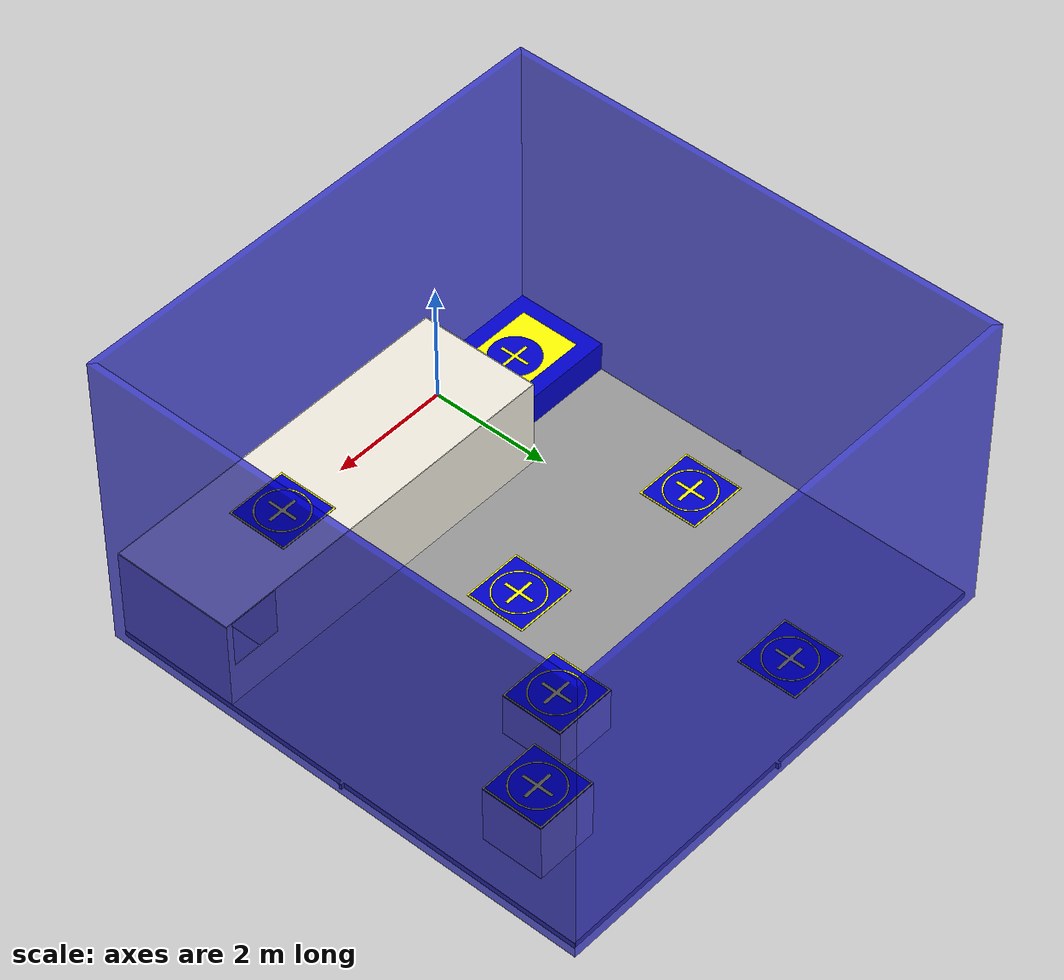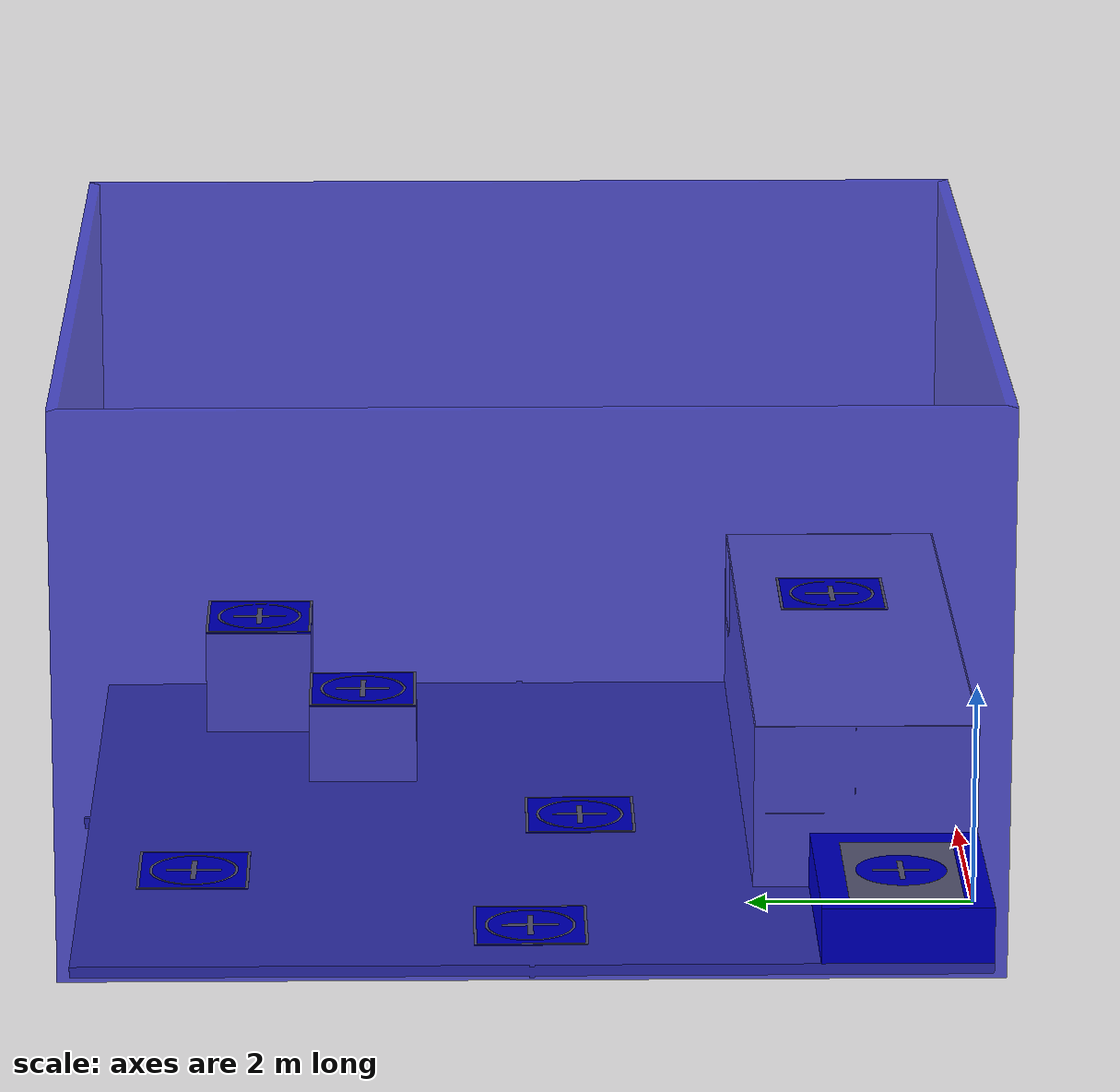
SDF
<sdf version='1.11'>
  <model name='arena_2025_desenho_2'>
    <link name='base_link'>
      <inertial>
        <pose>2.155232091123203 3.8505883809555179 1.663648573956134 0 0 0</pose>
        <mass>209967.48191373851</mass>
        <inertia>
          <ixx>2472111.9339144002</ixx>
          <ixy>-173259.3883490923</ixy>
          <ixz>-8533.563240836258</ixz>
          <iyy>2457101.6842017588</iyy>
          <iyz>-26917.53058494721</iyz>
          <izz>3817310.6190368058</izz>
        </inertia>
      </inertial>
      <collision name='base_link_collision_collision'>
        <pose>0 0 0 0 0 0</pose>
        <geometry>
          <mesh>
            <scale>0.001 0.001 0.001</scale>
            <uri>meshes/base_link.stl</uri>
          </mesh>
        </geometry>
      </collision>
      <collision name='base_link_fixed_joint_lump__parede1_collision_collision_1'>
        <pose>-1.8502115568123969 -0.041793670335398492 -1.387778780781446e-17 0 0 0</pose>
        <geometry>
          <mesh>
            <scale>0.001 0.001 0.001</scale>
            <uri>meshes/parede1.stl</uri>
          </mesh>
        </geometry>
      </collision>
      <collision name='base_link_fixed_joint_lump__parede4_collision_collision_2'>
        <pose>-1.8502115568123969 -0.041793670335399817 -2.4355517602714372e-15 0 0 0</pose>
        <geometry>
          <mesh>
            <scale>0.001 0.001 0.001</scale>
            <uri>meshes/parede4.stl</uri>
          </mesh>
        </geometry>
      </collision>
      <collision name='base_link_fixed_joint_lump__parede3_collision_collision_3'>
        <pose>-1.8502115568123969 -0.041793670335398943 1.117161918529064e-15 1.224646799147353e-16 -7.4987989133092894e-33 1.224646799147353e-16</pose>
        <geometry>
          <mesh>
            <scale>0.001 0.001 0.001</scale>
            <uri>meshes/parede3.stl</uri>
          </mesh>
        </geometry>
      </collision>
      <collision name='base_link_fixed_joint_lump__parede2_collision_collision_4'>
        <pose>-1.8502115568123969 -0.041793670335398478 -1.387778780781446e-17 0 0 0</pose>
        <geometry>
          <mesh>
            <scale>0.001 0.001 0.001</scale>
            <uri>meshes/parede2.stl</uri>
          </mesh>
        </geometry>
      </collision>
      <collision name='base_link_fixed_joint_lump__Takeoff_Baseazul_collision_collision_5'>
        <pose>-1.8502115568123969 -0.041793670335398492 2.9143354396410359e-16 0 0 0</pose>
        <geometry>
          <mesh>
            <scale>0.001 0.001 0.001</scale>
            <uri>meshes/Takeoff_Baseazul.stl</uri>
          </mesh>
        </geometry>
      </collision>
      <collision name='base_link_fixed_joint_lump__Takeoff_Baseamarelo_collision_collision_6'>
        <pose>-1.8502115568123969 -0.041793670335398492 3.6082248300317588e-16 0 0 0</pose>
        <geometry>
          <mesh>
            <scale>0.001 0.001 0.001</scale>
            <uri>meshes/Takeoff_Baseamarelo.stl</uri>
          </mesh>
        </geometry>
      </collision>
      <collision name='base_link_fixed_joint_lump__casa_paredes_collision_collision_7'>
        <pose>-1.850211556812398 -0.041793670335398492 0 0 0 0</pose>
        <geometry>
          <mesh>
            <scale>0.001 0.001 0.001</scale>
            <uri>meshes/casa_paredes.stl</uri>
          </mesh>
        </geometry>
      </collision>
      <collision name='base_link_fixed_joint_lump__casa_teto_collision_collision_8'>
        <pose>-1.8502115568123949 -0.041793670335397937 1.110223024625157e-16 0 0 0</pose>
        <geometry>
          <mesh>
            <scale>0.001 0.001 0.001</scale>
            <uri>meshes/casa_teto.stl</uri>
          </mesh>
        </geometry>
      </collision>
      <collision name='base_link_fixed_joint_lump__Landing_Basesazul6_collision_collision_9'>
        <pose>-0.85021155681239957 -0.041793670335397708 3.3306690738754701e-16 0 0 -2.465190328815663e-32</pose>
        <geometry>
          <mesh>
            <scale>0.001 0.001 0.001</scale>
            <uri>meshes/Landing_Basesazul6.stl</uri>
          </mesh>
        </geometry>
      </collision>
      <collision name='base_link_fixed_joint_lump__Landing_Basesamarelo_6_collision_collision_10'>
        <pose>-0.85021155681239957 -0.041793670335397708 -0.00099999999999977884 0 0 -2.465190328815663e-32</pose>
        <geometry>
          <mesh>
            <scale>0.001 0.001 0.001</scale>
            <uri>meshes/Landing_Basesamarelo_6.stl</uri>
          </mesh>
        </geometry>
      </collision>
      <collision name='base_link_fixed_joint_lump__base_movelzinza2_collision_collision_11'>
        <pose>0.64978851318359254 -0.041793670654296733 -0.001000000014901165 0 0 0</pose>
        <geometry>
          <mesh>
            <scale>0.001 0.001 0.001</scale>
            <uri>meshes/base_movelzinza2.stl</uri>
          </mesh>
        </geometry>
      </collision>
      <collision name='base_link_fixed_joint_lump__Landing_Basesazul2_collision_collision_12'>
        <pose>0.64978851318359876 -0.041793670654286068 -0.001000016108155283 0 0 0</pose>
        <geometry>
          <mesh>
            <scale>0.001 0.001 0.001</scale>
            <uri>meshes/Landing_Basesazul2.stl</uri>
          </mesh>
        </geometry>
      </collision>
      <collision name='base_link_fixed_joint_lump__Landing_Basesamarelo_2_collision_collision_13'>
        <pose>0.6497885131836032 -0.041793670654280753 -0.001000016108155283 0 0 0</pose>
        <geometry>
          <mesh>
            <scale>0.001 0.001 0.001</scale>
            <uri>meshes/Landing_Basesamarelo_2.stl</uri>
          </mesh>
        </geometry>
      </collision>
      <collision name='base_link_fixed_joint_lump__base_movelzinza1_collision_collision_14'>
        <pose>2.649788478185604 2.458206329505169 -0.0010000000000036371 0 0 0</pose>
        <geometry>
          <mesh>
            <scale>0.001 0.001 0.001</scale>
            <uri>meshes/base_movelzinza1.stl</uri>
          </mesh>
        </geometry>
      </collision>
      <collision name='base_link_fixed_joint_lump__Landing_Basesazul1_collision_collision_15'>
        <pose>2.6497884781856058 2.4582063295051761 1.4897499900357051e-11 0 0 0</pose>
        <geometry>
          <mesh>
            <scale>0.001 0.001 0.001</scale>
            <uri>meshes/Landing_Basesazul1.stl</uri>
          </mesh>
        </geometry>
      </collision>
      <collision name='base_link_fixed_joint_lump__Landing_Basesamarelo_1_collision_collision_16'>
        <pose>2.6497884781856089 2.4582063295051868 1.4897499900357051e-11 0 0 0</pose>
        <geometry>
          <mesh>
            <scale>0.001 0.001 0.001</scale>
            <uri>meshes/Landing_Basesamarelo_1.stl</uri>
          </mesh>
        </geometry>
      </collision>
      <collision name='base_link_fixed_joint_lump__Landing_Basesazul5_collision_collision_17'>
        <pose>-4.8502115218143844 0.45820632950516021 -3.6914915568786447e-15 0 0 0</pose>
        <geometry>
          <mesh>
            <scale>0.001 0.001 0.001</scale>
            <uri>meshes/Landing_Basesazul5.stl</uri>
          </mesh>
        </geometry>
      </collision>
      <collision name='base_link_fixed_joint_lump__Landing_Basesamarelo_5_collision_collision_18'>
        <pose>-4.8502115218144022 0.45820632950515222 -3.6914915568786447e-15 0 0 0</pose>
        <geometry>
          <mesh>
            <scale>0.001 0.001 0.001</scale>
            <uri>meshes/Landing_Basesamarelo_5.stl</uri>
          </mesh>
        </geometry>
      </collision>
      <collision name='base_link_fixed_joint_lump__Landing_Basesazul4_collision_collision_19'>
        <pose>-4.8502115218144022 -0.54179367049484783 -3.6914915568786447e-15 0 0 0</pose>
        <geometry>
          <mesh>
            <scale>0.001 0.001 0.001</scale>
            <uri>meshes/Landing_Basesazul4.stl</uri>
          </mesh>
        </geometry>
      </collision>
      <collision name='base_link_fixed_joint_lump__Landing_Basesamarelo_4_collision_collision_20'>
        <pose>-4.8502115218144022 -0.54179367049484783 -3.6914915568786447e-15 0 0 0</pose>
        <geometry>
          <mesh>
            <scale>0.001 0.001 0.001</scale>
            <uri>meshes/Landing_Basesamarelo_4.stl</uri>
          </mesh>
        </geometry>
      </collision>
      <collision name='base_link_fixed_joint_lump__Landing_Basesazul3_collision_collision_21'>
        <pose>-0.85021152181440163 0.95820632950515261 2.9143354396410359e-16 0 0 0</pose>
        <geometry>
          <mesh>
            <scale>0.001 0.001 0.001</scale>
            <uri>meshes/Landing_Basesazul3.stl</uri>
          </mesh>
        </geometry>
      </collision>
      <collision name='base_link_fixed_joint_lump__Landing_Basesamarelo_3_collision_collision_22'>
        <pose>-0.85021152181440163 0.95820632950515261 2.7755575615628909e-16 0 0 0</pose>
        <geometry>
          <mesh>
            <scale>0.001 0.001 0.001</scale>
            <uri>meshes/Landing_Basesamarelo_3.stl</uri>
          </mesh>
        </geometry>
      </collision>

      #visuals cores

      <visual name='base_link_visual_visual'>
        <pose>0 0 0 0 0 0</pose>
        <geometry>
          <mesh>
            <scale>0.001 0.001 0.001</scale>
            <uri>meshes/base_link.stl</uri>
          </mesh>
        </geometry>
        <material>
          <ambient>0.4 0.4 0.4 1</ambient>
          <diffuse>0.6 0.6 0.6 1</diffuse>
          <specular>0.8 0.8 0.8 1</specular>
        </material>
      </visual>
      <visual name='base_link_fixed_joint_lump__parede1_visual_visual_1'>
        <pose>-1.8502115568123969 -0.041793670335398492 -1.387778780781446e-17 0 0 0</pose>
        <geometry>
          <mesh>
            <scale>0.001 0.001 0.001</scale>
            <uri>meshes/parede1.stl</uri>
          </mesh>
        </geometry>
        <material>
          <ambient>0.0 0.0 0.5 0.65</ambient>
          <diffuse>0.0 0.0 0.8 0.65</diffuse>
          <specular>0.3 0.3 0.8 0.65</specular>
          <transparency>0.65</transparency>
        </material>
      </visual>
      <visual name='base_link_fixed_joint_lump__parede4_visual_visual_2'>
        <pose>-1.8502115568123969 -0.041793670335399817 -2.4355517602714372e-15 0 0 0</pose>
        <geometry>
          <mesh>
            <scale>0.001 0.001 0.001</scale>
            <uri>meshes/parede4.stl</uri>
          </mesh>
        </geometry>
        <material>
          <ambient>0.0 0.0 0.5 0.65</ambient>
          <diffuse>0.0 0.0 0.8 0.65</diffuse>
          <specular>0.3 0.3 0.8 0.65</specular>
          <transparency>0.65</transparency>
        </material>
      </visual>
      <visual name='base_link_fixed_joint_lump__parede3_visual_visual_3'>
        <pose>-1.8502115568123969 -0.041793670335398943 1.117161918529064e-15 1.224646799147353e-16 -7.4987989133092894e-33 1.224646799147353e-16</pose>
        <geometry>
          <mesh>
            <scale>0.001 0.001 0.001</scale>
            <uri>meshes/parede3.stl</uri>
          </mesh>
        </geometry>
        <material>
          <ambient>0.0 0.0 0.5 0.65</ambient>
          <diffuse>0.0 0.0 0.8 0.65</diffuse>
          <specular>0.3 0.3 0.8 0.65</specular>
          <transparency>0.65</transparency>
        </material>
      </visual>
      <visual name='base_link_fixed_joint_lump__parede2_visual_visual_4'>
        <pose>-1.8502115568123969 -0.041793670335398478 -1.387778780781446e-17 0 0 0</pose>
        <geometry>
          <mesh>
            <scale>0.001 0.001 0.001</scale>
            <uri>meshes/parede2.stl</uri>
          </mesh>
        </geometry>
        <material>
          <ambient>0.0 0.0 0.5 0.65</ambient>
          <diffuse>0.0 0.0 0.8 0.65</diffuse>
          <specular>0.3 0.3 0.8 0.65</specular>
          <transparency>0.65</transparency>
        </material>
      </visual>
      <visual name='base_link_fixed_joint_lump__Takeoff_Baseazul_visual_visual_5'>
        <pose>-1.8502115568123969 -0.041793670335398492 2.9143354396410359e-16 0 0 0</pose>
        <geometry>
          <mesh>
            <scale>0.001 0.001 0.001</scale>
            <uri>meshes/Takeoff_Baseazul.stl</uri>
          </mesh>
        </geometry>
        <material>
          <ambient>0.0 0.0 0.5 1</ambient>
          <diffuse>0.0 0.0 0.8 1</diffuse>
          <specular>0.3 0.3 0.8 1</specular>
        </material>
      </visual>
      <visual name='base_link_fixed_joint_lump__Takeoff_Baseamarelo_visual_visual_6'>
        <pose>-1.8502115568123969 -0.041793670335398492 3.6082248300317588e-16 0 0 0</pose>
        <geometry>
          <mesh>
            <scale>0.001 0.001 0.001</scale>
            <uri>meshes/Takeoff_Baseamarelo.stl</uri>
          </mesh>
        </geometry>
        <material>
          <ambient>0.8 0.8 0.0 1</ambient>
          <diffuse>1.0 1.0 0.0 1</diffuse>
           <specular>0.8 0.8 0.3 1</specular>
        </material>
      </visual>
      <visual name='base_link_fixed_joint_lump__casa_paredes_visual_visual_7'>
        <pose>-1.850211556812398 -0.041793670335398492 0 0 0 0</pose>
        <geometry>
          <mesh>
            <scale>0.001 0.001 0.001</scale>
            <uri>meshes/casa_paredes.stl</uri>
          </mesh>
        </geometry>
        <material>
          <ambient>0.92 0.90 0.85 1</ambient>
          <diffuse>0.94 0.92 0.87 1</diffuse>
          <specular>0.14 0.14 0.13 1</specular>
        </material>
      </visual>
      <visual name='base_link_fixed_joint_lump__casa_teto_visual_visual_8'>
        <pose>-1.8502115568123949 -0.041793670335397937 1.110223024625157e-16 0 0 0</pose>
        <geometry>
          <mesh>
            <scale>0.001 0.001 0.001</scale>
            <uri>meshes/casa_teto.stl</uri>
          </mesh>
        </geometry>
        <material>
          <ambient>0.92 0.90 0.85 1</ambient>
          <diffuse>0.94 0.92 0.87 1</diffuse>
          <specular>0.14 0.14 0.13 1</specular>
        </material>
      </visual>
      <visual name='base_link_fixed_joint_lump__Landing_Basesazul6_visual_visual_9'>
        <pose>-0.85021155681239957 -0.041793670335397708 3.3306690738754701e-16 0 0 -2.465190328815663e-32</pose>
        <geometry>
          <mesh>
            <scale>0.001 0.001 0.001</scale>
            <uri>meshes/Landing_Basesazul6.stl</uri>
          </mesh>
        </geometry>
        <material>
          <ambient>0.0 0.0 0.5 1</ambient>
          <diffuse>0.0 0.0 0.8 1</diffuse>
          <specular>0.3 0.3 0.8 1</specular>
        </material>
      </visual>
      <visual name='base_link_fixed_joint_lump__Landing_Basesamarelo_6_visual_visual_10'>
        <pose>-0.85021155681239957 -0.041793670335397708 -0.00099999999999977884 0 0 -2.465190328815663e-32</pose>
        <geometry>
          <mesh>
            <scale>0.001 0.001 0.001</scale>
            <uri>meshes/Landing_Basesamarelo_6.stl</uri>
          </mesh>
        </geometry>
        <material>
          <ambient>0.8 0.8 0.0 1</ambient>
          <diffuse>1.0 1.0 0.0 1</diffuse>
           <specular>0.8 0.8 0.3 1</specular>
        </material>
      </visual>
      <visual name='base_link_fixed_joint_lump__base_movelzinza2_visual_visual_11'>
        <pose>0.64978851318359254 -0.041793670654296733 -0.001000000014901165 0 0 0</pose>
        <geometry>
          <mesh>
            <scale>0.001 0.001 0.001</scale>
            <uri>meshes/base_movelzinza2.stl</uri>
          </mesh>
        </geometry>
        <material>
          <ambient>0.92 0.90 0.85 1</ambient>
          <diffuse>0.94 0.92 0.87 1</diffuse>
          <specular>0.14 0.14 0.13 1</specular>
        </material>
      </visual>
      <visual name='base_link_fixed_joint_lump__Landing_Basesazul2_visual_visual_12'>
        <pose>0.64978851318359876 -0.041793670654286068 -0.001000016108155283 0 0 0</pose>
        <geometry>
          <mesh>
            <scale>0.001 0.001 0.001</scale>
            <uri>meshes/Landing_Basesazul2.stl</uri>
          </mesh>
        </geometry>
        <material>
          <ambient>0.0 0.0 0.5 1</ambient>
          <diffuse>0.0 0.0 0.8 1</diffuse>
          <specular>0.3 0.3 0.8 1</specular>
        </material>
      </visual>
      <visual name='base_link_fixed_joint_lump__Landing_Basesamarelo_2_visual_visual_13'>
        <pose>0.6497885131836032 -0.041793670654280753 -0.001000016108155283 0 0 0</pose>
        <geometry>
          <mesh>
            <scale>0.001 0.001 0.001</scale>
            <uri>meshes/Landing_Basesamarelo_2.stl</uri>
          </mesh>
        </geometry>
        <material>
          <ambient>0.8 0.8 0.0 1</ambient>
          <diffuse>1.0 1.0 0.0 1</diffuse>
           <specular>0.8 0.8 0.3 1</specular>
        </material>
      </visual>
      <visual name='base_link_fixed_joint_lump__base_movelzinza1_visual_visual_14'>
        <pose>2.649788478185604 2.458206329505169 -0.0010000000000036371 0 0 0</pose>
        <geometry>
          <mesh>
            <scale>0.001 0.001 0.001</scale>
            <uri>meshes/base_movelzinza1.stl</uri>
          </mesh>
        </geometry>
        <material>
          <ambient>0.92 0.90 0.85 1</ambient>
          <diffuse>0.94 0.92 0.87 1</diffuse>
          <specular>0.14 0.14 0.13 1</specular>
        </material>
      </visual>
      <visual name='base_link_fixed_joint_lump__Landing_Basesazul1_visual_visual_15'>
        <pose>2.6497884781856058 2.4582063295051761 1.4897499900357051e-11 0 0 0</pose>
        <geometry>
          <mesh>
            <scale>0.001 0.001 0.001</scale>
            <uri>meshes/Landing_Basesazul1.stl</uri>
          </mesh>
        </geometry>
        <material>
          <ambient>0.0 0.0 0.5 1</ambient>
          <diffuse>0.0 0.0 0.8 1</diffuse>
          <specular>0.3 0.3 0.8 1</specular>
        </material>
      </visual>
      <visual name='base_link_fixed_joint_lump__Landing_Basesamarelo_1_visual_visual_16'>
        <pose>2.6497884781856089 2.4582063295051868 1.4897499900357051e-11 0 0 0</pose>
        <geometry>
          <mesh>
            <scale>0.001 0.001 0.001</scale>
            <uri>meshes/Landing_Basesamarelo_1.stl</uri>
          </mesh>
        </geometry>
        <material>
          <ambient>0.8 0.8 0.0 1</ambient>
          <diffuse>1.0 1.0 0.0 1</diffuse>
           <specular>0.8 0.8 0.3 1</specular>
        </material>
      </visual>
      <visual name='base_link_fixed_joint_lump__Landing_Basesazul5_visual_visual_17'>
        <pose>-4.8502115218143844 0.45820632950516021 -3.6914915568786447e-15 0 0 0</pose>
        <geometry>
          <mesh>
            <scale>0.001 0.001 0.001</scale>
            <uri>meshes/Landing_Basesazul5.stl</uri>
          </mesh>
        </geometry>
        <material>
          <ambient>0.0 0.0 0.5 1</ambient>
          <diffuse>0.0 0.0 0.8 1</diffuse>
          <specular>0.3 0.3 0.8 1</specular>
        </material>
      </visual>
      <visual name='base_link_fixed_joint_lump__Landing_Basesamarelo_5_visual_visual_18'>
        <pose>-4.8502115218144022 0.45820632950515222 -3.6914915568786447e-15 0 0 0</pose>
        <geometry>
          <mesh>
            <scale>0.001 0.001 0.001</scale>
            <uri>meshes/Landing_Basesamarelo_5.stl</uri>
          </mesh>
        </geometry>
        <material>
          <ambient>0.8 0.8 0.0 1</ambient>
          <diffuse>1.0 1.0 0.0 1</diffuse>
           <specular>0.8 0.8 0.3 1</specular>
        </material>
      </visual>
      <visual name='base_link_fixed_joint_lump__Landing_Basesazul4_visual_visual_19'>
        <pose>-4.8502115218144022 -0.54179367049484783 -3.6914915568786447e-15 0 0 0</pose>
        <geometry>
          <mesh>
            <scale>0.001 0.001 0.001</scale>
            <uri>meshes/Landing_Basesazul4.stl</uri>
          </mesh>
        </geometry>
        <material>
          <ambient>0.0 0.0 0.5 1</ambient>
          <diffuse>0.0 0.0 0.8 1</diffuse>
          <specular>0.3 0.3 0.8 1</specular>
        </material>
      </visual>
      <visual name='base_link_fixed_joint_lump__Landing_Basesamarelo_4_visual_visual_20'>
        <pose>-4.8502115218144022 -0.54179367049484783 -3.6914915568786447e-15 0 0 0</pose>
        <geometry>
          <mesh>
            <scale>0.001 0.001 0.001</scale>
            <uri>meshes/Landing_Basesamarelo_4.stl</uri>
          </mesh>
        </geometry>
        <material>
          <ambient>0.8 0.8 0.0 1</ambient>
          <diffuse>1.0 1.0 0.0 1</diffuse>
           <specular>0.8 0.8 0.3 1</specular>
        </material>
      </visual>
      <visual name='base_link_fixed_joint_lump__Landing_Basesazul3_visual_visual_21'>
        <pose>-0.85021152181440163 0.95820632950515261 2.9143354396410359e-16 0 0 0</pose>
        <geometry>
          <mesh>
            <scale>0.001 0.001 0.001</scale>
            <uri>meshes/Landing_Basesazul3.stl</uri>
          </mesh>
        </geometry>
        <material>
          <ambient>0.0 0.0 0.5 1</ambient>
          <diffuse>0.0 0.0 0.8 1</diffuse>
          <specular>0.3 0.3 0.8 1</specular>
        </material>
      </visual>
      <visual name='base_link_fixed_joint_lump__Landing_Basesamarelo_3_visual_visual_22'>
        <pose>-0.85021152181440163 0.95820632950515261 2.7755575615628909e-16 0 0 0</pose>
        <geometry>
          <mesh>
            <scale>0.001 0.001 0.001</scale>
            <uri>meshes/Landing_Basesamarelo_3.stl</uri>
          </mesh>
        </geometry>
        <material>
          <ambient>0.8 0.8 0.0 1</ambient>
          <diffuse>1.0 1.0 0.0 1</diffuse>
           <specular>0.8 0.8 0.3 1</specular>
        </material>
      </visual>
    </link>
    <frame name='base_link_Rígido-31' attached_to='base_link'>
      <pose>-1.900211556812397 3.958206329664602 0.050000000000000051 0 -1.5707963267948966 0</pose>
    </frame>
    <frame name='parede1' attached_to='base_link_Rígido-31'>
      <pose>0 0 0 0 0 0</pose>
    </frame>
    <frame name='base_link_Rígido-32' attached_to='base_link'>
      <pose>2.1497884431876031 8.0082063296646009 0.050000000000000051 -1.5707963267948959 0 0</pose>
    </frame>
    <frame name='parede4' attached_to='base_link_Rígido-32'>
      <pose>0 0 0 0 0 0</pose>
    </frame>
    <frame name='base_link_Rígido-33' attached_to='base_link'>
      <pose>6.1997884431876038 3.958206319664602 0.050000000000000051 -3.1415926535897931 -1.5707963267948966 0</pose>
    </frame>
    <frame name='parede3' attached_to='base_link_Rígido-33'>
      <pose>0 0 0 0 0 0</pose>
    </frame>
    <frame name='base_link_Rígido-34' attached_to='base_link'>
      <pose>2.1497884431876031 -0.091793670335398481 0.050000000000000051 1.5707963267948959 0 0</pose>
    </frame>
    <frame name='parede2' attached_to='base_link_Rígido-34'>
      <pose>0 0 0 0 0 0</pose>
    </frame>
    <frame name='Takeoff_Baseazul_Rígido-44' attached_to='Takeoff_Baseazul'>
      <pose>0 0 0.49099999999999999 0 0 0</pose>
    </frame>
    <frame name='Takeoff_Baseamarelo' attached_to='Takeoff_Baseazul_Rígido-44'>
      <pose>0 0 0 0 0 0</pose>
    </frame>
    <frame name='base_link_Rígido-35' attached_to='base_link'>
      <pose>-0.85021155681239691 0.70820632966460151 0.09900000000000006 0 0 0</pose>
    </frame>
    <frame name='Takeoff_Baseazul' attached_to='base_link_Rígido-35'>
      <pose>0 0 0 0 0 0</pose>
    </frame>
    <frame name='Landing_Basesazul6_Rígido-50' attached_to='Landing_Basesazul6'>
      <pose>0 -1.4210854715201999e-16 0.0050000000000000001 0 0 0</pose>
    </frame>
    <frame name='Landing_Basesamarelo_6' attached_to='Landing_Basesazul6_Rígido-50'>
      <pose>0 0 0 0 0 0</pose>
    </frame>
    <frame name='casa_teto_Rígido-67' attached_to='casa_teto'>
      <pose>1.01199997 0.08800454000000002 0.0040000000000000573 0 0 0</pose>
    </frame>
    <frame name='Landing_Basesazul6' attached_to='casa_teto_Rígido-67'>
      <pose>0 0 0 0 0 0</pose>
    </frame>
    <frame name='casa_paredes_Rígido-42' attached_to='casa_paredes'>
      <pose>0 0 1.522 0 0 0</pose>
    </frame>
    <frame name='casa_teto' attached_to='casa_paredes_Rígido-42'>
      <pose>0 0 0 0 0 0</pose>
    </frame>
    <frame name='base_link_Rígido-41' attached_to='base_link'>
      <pose>3.1377884731876029 0.95820178966460146 0.073000000000000065 0 0 0</pose>
    </frame>
    <frame name='casa_paredes' attached_to='base_link_Rígido-41'>
      <pose>0 0 0 0 0 0</pose>
    </frame>
    <frame name='Landing_Basesazul2_Rígido-61' attached_to='Landing_Basesazul2'>
      <pose>0 0 0.0099999800000000506 0 0 0</pose>
    </frame>
    <frame name='Landing_Basesamarelo_2' attached_to='Landing_Basesazul2_Rígido-61'>
      <pose>0 0 0 0 0 0</pose>
    </frame>
    <frame name='base_movelzinza2_Rígido-60' attached_to='base_movelzinza2'>
      <pose>0 0 0.97999999999999998 0 0 0</pose>
    </frame>
    <frame name='Landing_Basesazul2' attached_to='base_movelzinza2_Rígido-60'>
      <pose>0 0 0 0 0 0</pose>
    </frame>
    <frame name='base_link_Rígido-62' attached_to='base_link'>
      <pose>5.1497885131876027 6.458206329664602 0.09900000000000006 0 0 0</pose>
    </frame>
    <frame name='base_movelzinza2' attached_to='base_link_Rígido-62'>
      <pose>0 0 0 0 0 0</pose>
    </frame>
    <frame name='Landing_Basesazul1_Rígido-57' attached_to='Landing_Basesazul1'>
      <pose>0 0 0.01099999999999994 0 0 0</pose>
    </frame>
    <frame name='Landing_Basesamarelo_1' attached_to='Landing_Basesazul1_Rígido-57'>
      <pose>0 0 0 0 0 0</pose>
    </frame>
    <frame name='base_movelzinza1_Rígido-56' attached_to='base_movelzinza1'>
      <pose>0 0 0.72999999999999998 0 0 0</pose>
    </frame>
    <frame name='Landing_Basesazul1' attached_to='base_movelzinza1_Rígido-56'>
      <pose>0 0 0 0 0 0</pose>
    </frame>
    <frame name='base_link_Rígido-63' attached_to='base_link'>
      <pose>3.6497884731876029 5.458206329664602 0.09900000000000006 0 0 0</pose>
    </frame>
    <frame name='base_movelzinza1' attached_to='base_link_Rígido-63'>
      <pose>0 0 0 0 0 0</pose>
    </frame>
    <frame name='Landing_Basesazul5_Rígido-49' attached_to='Landing_Basesazul5'>
      <pose>0 0 0.0050000000000000001 0 0 0</pose>
    </frame>
    <frame name='Landing_Basesamarelo_5' attached_to='Landing_Basesazul5_Rígido-49'>
      <pose>0 0 0 0 0 0</pose>
    </frame>
    <frame name='base_link_Rígido-64' attached_to='base_link'>
      <pose>2.1497884731876029 3.458206329664602 0.09900000000000006 0 0 0</pose>
    </frame>
    <frame name='Landing_Basesazul5' attached_to='base_link_Rígido-64'>
      <pose>0 0 0 0 0 0</pose>
    </frame>
    <frame name='Landing_Basesazul4_Rígido-48' attached_to='Landing_Basesazul4'>
      <pose>0 0 0.0050000000000000001 0 0 0</pose>
    </frame>
    <frame name='Landing_Basesamarelo_4' attached_to='Landing_Basesazul4_Rígido-48'>
      <pose>0 0 0 0 0 0</pose>
    </frame>
    <frame name='base_link_Rígido-65' attached_to='base_link'>
      <pose>-0.85021152681239687 3.958206329664602 0.09900000000000006 0 0 0</pose>
    </frame>
    <frame name='Landing_Basesazul4' attached_to='base_link_Rígido-65'>
      <pose>0 0 0 0 0 0</pose>
    </frame>
    <frame name='Landing_Basesazul3_Rígido-46' attached_to='Landing_Basesazul3'>
      <pose>0 0 0.0059999999999999967 0 0 0</pose>
    </frame>
    <frame name='Landing_Basesamarelo_3' attached_to='Landing_Basesazul3_Rígido-46'>
      <pose>0 0 0 0 0 0</pose>
    </frame>
    <frame name='base_link_Rígido-66' attached_to='base_link'>
      <pose>0.64978847318760302 6.958206329664602 0.09900000000000006 0 0 0</pose>
    </frame>
    <frame name='Landing_Basesazul3' attached_to='base_link_Rígido-66'>
      <pose>0 0 0 0 0 0</pose>
    </frame>
  </model>
</sdf>
